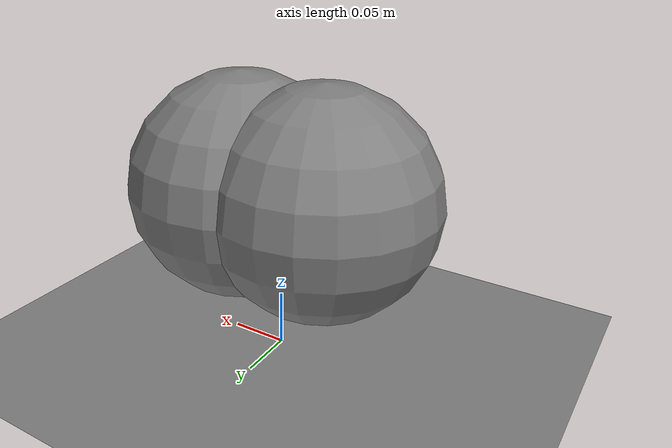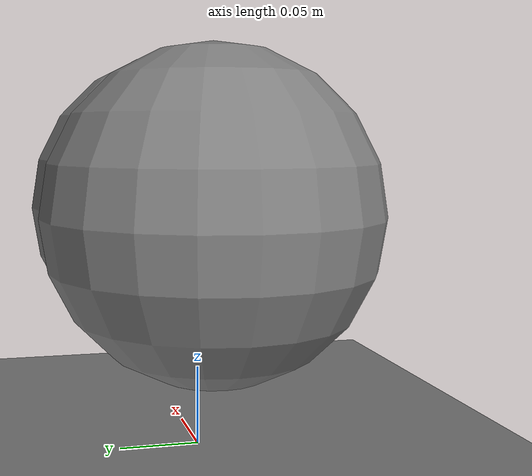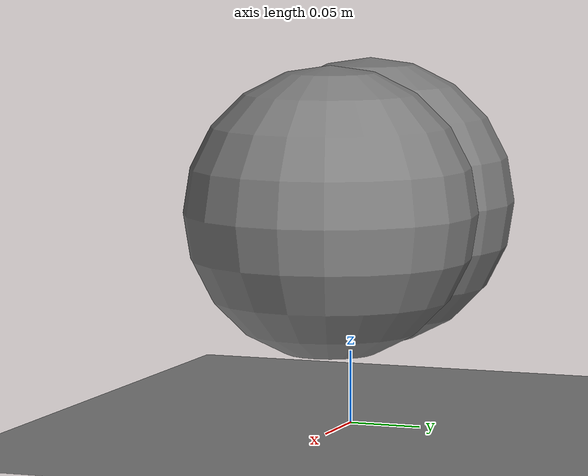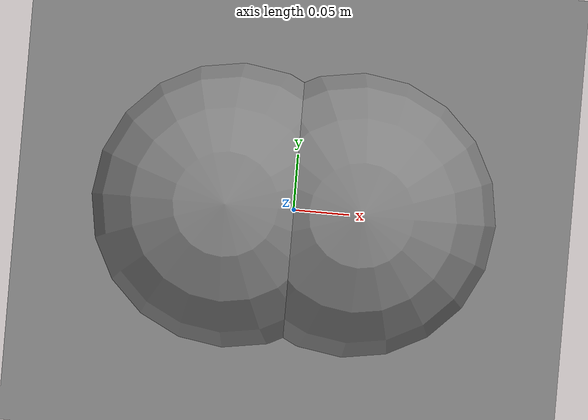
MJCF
<mujoco model="adhesion_two_body">
            <option gravity="0 0 -9.81" timestep="0.001"/>
            <worldbody>
                <geom type="plane" size="10 10 1"/>
                <body name="left" pos="-0.04 0 0.15">
                    <joint name="slide_left" type="slide" axis="1 0 0"/>
                    <geom type="sphere" size="0.1" mass="1.0"/>
                </body>
                <body name="right" pos="0.04 0 0.15">
                    <joint name="slide_right" type="slide" axis="1 0 0"/>
                    <geom type="sphere" size="0.1" mass="1.0"/>
                </body>
            </worldbody>
            <actuator>
                <adhesion name="grip" body="left" gain="100" ctrlrange="0 1"/>
            </actuator>
        </mujoco>
